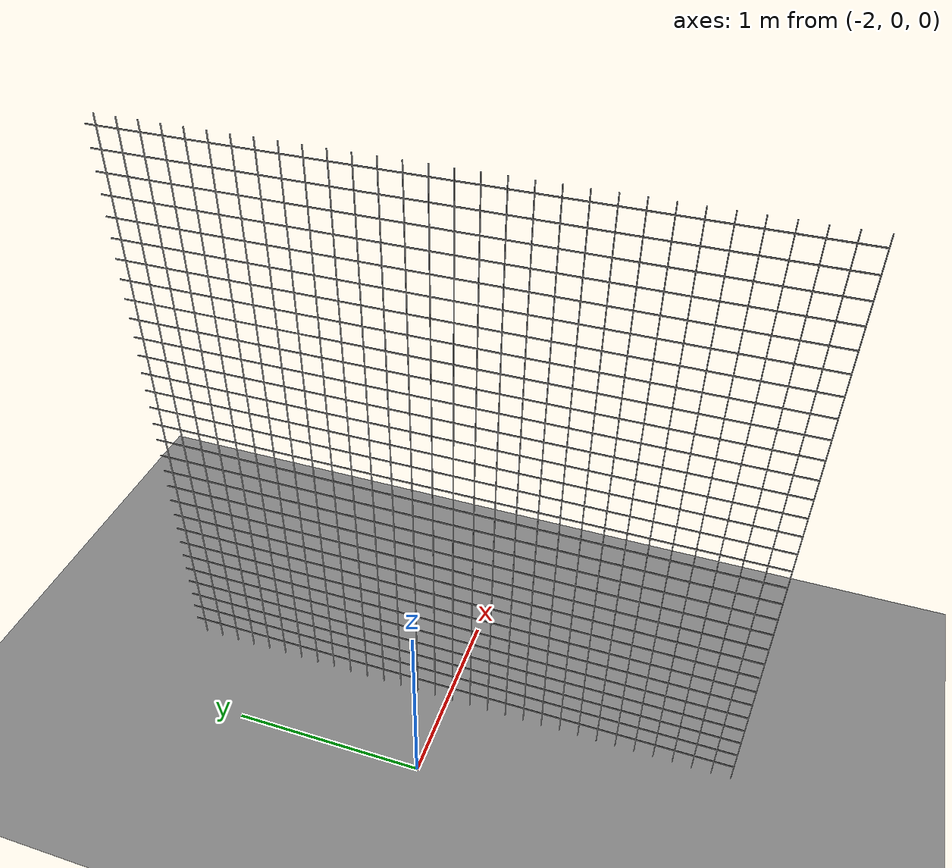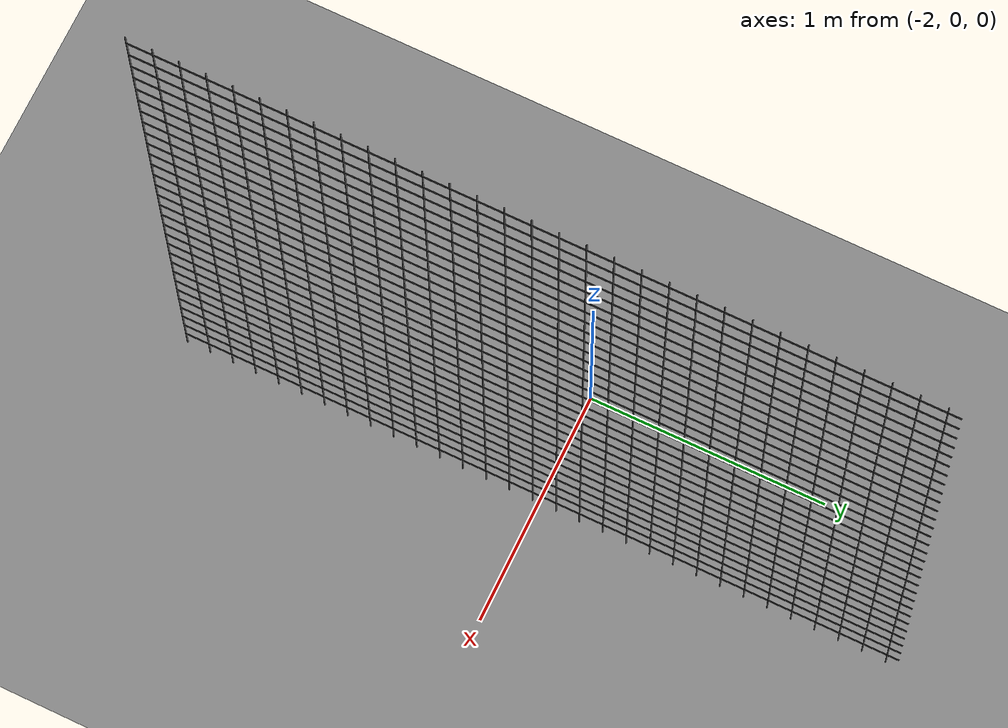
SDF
<sdf version="1.9">
 <world name="ecps295_cage10_monitor">
  <model name="ground_plane">
   <static>true</static>
   <link name="link">
    <collision name="collision">
     <geometry><plane><normal>0 0 1</normal><size>50 50</size></plane></geometry>
    </collision>
    <visual name="visual">
     <geometry><plane><normal>0 0 1</normal><size>50 50</size></plane></geometry>
     <material><ambient>0.5 0.5 0.5 1</ambient><diffuse>0.5 0.5 0.5 1</diffuse></material>
    </visual>
   </link>
  </model>
  <model name="net_w">
   <static>true</static>
   <link name="link">
    <collision name="c">
     <pose>-1.525 0.000 1.525 0 0 0</pose>
     <geometry><box><size>0.020 3.050 3.050</size></box></geometry>
    </collision>
    <visual name="v0">
     <pose>-1.525 -1.525 1.525 0 0 0.0000</pose>
     <geometry><box><size>0.004 0.004 3.050</size></box></geometry>
     <material><ambient>0.16 0.16 0.16 1</ambient><diffuse>0.16 0.16 0.16 1</diffuse></material>
    </visual>
    <visual name="v1">
     <pose>-1.525 -1.425 1.525 0 0 0.0000</pose>
     <geometry><box><size>0.004 0.004 3.050</size></box></geometry>
     <material><ambient>0.16 0.16 0.16 1</ambient><diffuse>0.16 0.16 0.16 1</diffuse></material>
    </visual>
    <visual name="v2">
     <pose>-1.525 -1.325 1.525 0 0 0.0000</pose>
     <geometry><box><size>0.004 0.004 3.050</size></box></geometry>
     <material><ambient>0.16 0.16 0.16 1</ambient><diffuse>0.16 0.16 0.16 1</diffuse></material>
    </visual>
    <visual name="v3">
     <pose>-1.525 -1.225 1.525 0 0 0.0000</pose>
     <geometry><box><size>0.004 0.004 3.050</size></box></geometry>
     <material><ambient>0.16 0.16 0.16 1</ambient><diffuse>0.16 0.16 0.16 1</diffuse></material>
    </visual>
    <visual name="v4">
     <pose>-1.525 -1.125 1.525 0 0 0.0000</pose>
     <geometry><box><size>0.004 0.004 3.050</size></box></geometry>
     <material><ambient>0.16 0.16 0.16 1</ambient><diffuse>0.16 0.16 0.16 1</diffuse></material>
    </visual>
    <visual name="v5">
     <pose>-1.525 -1.025 1.525 0 0 0.0000</pose>
     <geometry><box><size>0.004 0.004 3.050</size></box></geometry>
     <material><ambient>0.16 0.16 0.16 1</ambient><diffuse>0.16 0.16 0.16 1</diffuse></material>
    </visual>
    <visual name="v6">
     <pose>-1.525 -0.925 1.525 0 0 0.0000</pose>
     <geometry><box><size>0.004 0.004 3.050</size></box></geometry>
     <material><ambient>0.16 0.16 0.16 1</ambient><diffuse>0.16 0.16 0.16 1</diffuse></material>
    </visual>
    <visual name="v7">
     <pose>-1.525 -0.825 1.525 0 0 0.0000</pose>
     <geometry><box><size>0.004 0.004 3.050</size></box></geometry>
     <material><ambient>0.16 0.16 0.16 1</ambient><diffuse>0.16 0.16 0.16 1</diffuse></material>
    </visual>
    <visual name="v8">
     <pose>-1.525 -0.725 1.525 0 0 0.0000</pose>
     <geometry><box><size>0.004 0.004 3.050</size></box></geometry>
     <material><ambient>0.16 0.16 0.16 1</ambient><diffuse>0.16 0.16 0.16 1</diffuse></material>
    </visual>
    <visual name="v9">
     <pose>-1.525 -0.625 1.525 0 0 0.0000</pose>
     <geometry><box><size>0.004 0.004 3.050</size></box></geometry>
     <material><ambient>0.16 0.16 0.16 1</ambient><diffuse>0.16 0.16 0.16 1</diffuse></material>
    </visual>
    <visual name="v10">
     <pose>-1.525 -0.525 1.525 0 0 0.0000</pose>
     <geometry><box><size>0.004 0.004 3.050</size></box></geometry>
     <material><ambient>0.16 0.16 0.16 1</ambient><diffuse>0.16 0.16 0.16 1</diffuse></material>
    </visual>
    <visual name="v11">
     <pose>-1.525 -0.425 1.525 0 0 0.0000</pose>
     <geometry><box><size>0.004 0.004 3.050</size></box></geometry>
     <material><ambient>0.16 0.16 0.16 1</ambient><diffuse>0.16 0.16 0.16 1</diffuse></material>
    </visual>
    <visual name="v12">
     <pose>-1.525 -0.325 1.525 0 0 0.0000</pose>
     <geometry><box><size>0.004 0.004 3.050</size></box></geometry>
     <material><ambient>0.16 0.16 0.16 1</ambient><diffuse>0.16 0.16 0.16 1</diffuse></material>
    </visual>
    <visual name="v13">
     <pose>-1.525 -0.225 1.525 0 0 0.0000</pose>
     <geometry><box><size>0.004 0.004 3.050</size></box></geometry>
     <material><ambient>0.16 0.16 0.16 1</ambient><diffuse>0.16 0.16 0.16 1</diffuse></material>
    </visual>
    <visual name="v14">
     <pose>-1.525 -0.125 1.525 0 0 0.0000</pose>
     <geometry><box><size>0.004 0.004 3.050</size></box></geometry>
     <material><ambient>0.16 0.16 0.16 1</ambient><diffuse>0.16 0.16 0.16 1</diffuse></material>
    </visual>
    <visual name="v15">
     <pose>-1.525 -0.025 1.525 0 0 0.0000</pose>
     <geometry><box><size>0.004 0.004 3.050</size></box></geometry>
     <material><ambient>0.16 0.16 0.16 1</ambient><diffuse>0.16 0.16 0.16 1</diffuse></material>
    </visual>
    <visual name="v16">
     <pose>-1.525 0.075 1.525 0 0 0.0000</pose>
     <geometry><box><size>0.004 0.004 3.050</size></box></geometry>
     <material><ambient>0.16 0.16 0.16 1</ambient><diffuse>0.16 0.16 0.16 1</diffuse></material>
    </visual>
    <visual name="v17">
     <pose>-1.525 0.175 1.525 0 0 0.0000</pose>
     <geometry><box><size>0.004 0.004 3.050</size></box></geometry>
     <material><ambient>0.16 0.16 0.16 1</ambient><diffuse>0.16 0.16 0.16 1</diffuse></material>
    </visual>
    <visual name="v18">
     <pose>-1.525 0.275 1.525 0 0 0.0000</pose>
     <geometry><box><size>0.004 0.004 3.050</size></box></geometry>
     <material><ambient>0.16 0.16 0.16 1</ambient><diffuse>0.16 0.16 0.16 1</diffuse></material>
    </visual>
    <visual name="v19">
     <pose>-1.525 0.375 1.525 0 0 0.0000</pose>
     <geometry><box><size>0.004 0.004 3.050</size></box></geometry>
     <material><ambient>0.16 0.16 0.16 1</ambient><diffuse>0.16 0.16 0.16 1</diffuse></material>
    </visual>
    <visual name="v20">
     <pose>-1.525 0.475 1.525 0 0 0.0000</pose>
     <geometry><box><size>0.004 0.004 3.050</size></box></geometry>
     <material><ambient>0.16 0.16 0.16 1</ambient><diffuse>0.16 0.16 0.16 1</diffuse></material>
    </visual>
    <visual name="v21">
     <pose>-1.525 0.575 1.525 0 0 0.0000</pose>
     <geometry><box><size>0.004 0.004 3.050</size></box></geometry>
     <material><ambient>0.16 0.16 0.16 1</ambient><diffuse>0.16 0.16 0.16 1</diffuse></material>
    </visual>
    <visual name="v22">
     <pose>-1.525 0.675 1.525 0 0 0.0000</pose>
     <geometry><box><size>0.004 0.004 3.050</size></box></geometry>
     <material><ambient>0.16 0.16 0.16 1</ambient><diffuse>0.16 0.16 0.16 1</diffuse></material>
    </visual>
    <visual name="v23">
     <pose>-1.525 0.775 1.525 0 0 0.0000</pose>
     <geometry><box><size>0.004 0.004 3.050</size></box></geometry>
     <material><ambient>0.16 0.16 0.16 1</ambient><diffuse>0.16 0.16 0.16 1</diffuse></material>
    </visual>
    <visual name="v24">
     <pose>-1.525 0.875 1.525 0 0 0.0000</pose>
     <geometry><box><size>0.004 0.004 3.050</size></box></geometry>
     <material><ambient>0.16 0.16 0.16 1</ambient><diffuse>0.16 0.16 0.16 1</diffuse></material>
    </visual>
    <visual name="v25">
     <pose>-1.525 0.975 1.525 0 0 0.0000</pose>
     <geometry><box><size>0.004 0.004 3.050</size></box></geometry>
     <material><ambient>0.16 0.16 0.16 1</ambient><diffuse>0.16 0.16 0.16 1</diffuse></material>
    </visual>
    <visual name="v26">
     <pose>-1.525 1.075 1.525 0 0 0.0000</pose>
     <geometry><box><size>0.004 0.004 3.050</size></box></geometry>
     <material><ambient>0.16 0.16 0.16 1</ambient><diffuse>0.16 0.16 0.16 1</diffuse></material>
    </visual>
    <visual name="v27">
     <pose>-1.525 1.175 1.525 0 0 0.0000</pose>
     <geometry><box><size>0.004 0.004 3.050</size></box></geometry>
     <material><ambient>0.16 0.16 0.16 1</ambient><diffuse>0.16 0.16 0.16 1</diffuse></material>
    </visual>
    <visual name="v28">
     <pose>-1.525 1.275 1.525 0 0 0.0000</pose>
     <geometry><box><size>0.004 0.004 3.050</size></box></geometry>
     <material><ambient>0.16 0.16 0.16 1</ambient><diffuse>0.16 0.16 0.16 1</diffuse></material>
    </visual>
    <visual name="v29">
     <pose>-1.525 1.375 1.525 0 0 0.0000</pose>
     <geometry><box><size>0.004 0.004 3.050</size></box></geometry>
     <material><ambient>0.16 0.16 0.16 1</ambient><diffuse>0.16 0.16 0.16 1</diffuse></material>
    </visual>
    <visual name="v30">
     <pose>-1.525 1.475 1.525 0 0 0.0000</pose>
     <geometry><box><size>0.004 0.004 3.050</size></box></geometry>
     <material><ambient>0.16 0.16 0.16 1</ambient><diffuse>0.16 0.16 0.16 1</diffuse></material>
    </visual>
    <visual name="h1">
     <pose>-1.525 0.000 0.100 0 0 0.0000</pose>
     <geometry><box><size>0.004 3.050 0.004</size></box></geometry>
     <material><ambient>0.16 0.16 0.16 1</ambient><diffuse>0.16 0.16 0.16 1</diffuse></material>
    </visual>
    <visual name="h2">
     <pose>-1.525 0.000 0.200 0 0 0.0000</pose>
     <geometry><box><size>0.004 3.050 0.004</size></box></geometry>
     <material><ambient>0.16 0.16 0.16 1</ambient><diffuse>0.16 0.16 0.16 1</diffuse></material>
    </visual>
    <visual name="h3">
     <pose>-1.525 0.000 0.300 0 0 0.0000</pose>
     <geometry><box><size>0.004 3.050 0.004</size></box></geometry>
     <material><ambient>0.16 0.16 0.16 1</ambient><diffuse>0.16 0.16 0.16 1</diffuse></material>
    </visual>
    <visual name="h4">
     <pose>-1.525 0.000 0.400 0 0 0.0000</pose>
     <geometry><box><size>0.004 3.050 0.004</size></box></geometry>
     <material><ambient>0.16 0.16 0.16 1</ambient><diffuse>0.16 0.16 0.16 1</diffuse></material>
    </visual>
    <visual name="h5">
     <pose>-1.525 0.000 0.500 0 0 0.0000</pose>
     <geometry><box><size>0.004 3.050 0.004</size></box></geometry>
     <material><ambient>0.16 0.16 0.16 1</ambient><diffuse>0.16 0.16 0.16 1</diffuse></material>
    </visual>
    <visual name="h6">
     <pose>-1.525 0.000 0.600 0 0 0.0000</pose>
     <geometry><box><size>0.004 3.050 0.004</size></box></geometry>
     <material><ambient>0.16 0.16 0.16 1</ambient><diffuse>0.16 0.16 0.16 1</diffuse></material>
    </visual>
    <visual name="h7">
     <pose>-1.525 0.000 0.700 0 0 0.0000</pose>
     <geometry><box><size>0.004 3.050 0.004</size></box></geometry>
     <material><ambient>0.16 0.16 0.16 1</ambient><diffuse>0.16 0.16 0.16 1</diffuse></material>
    </visual>
    <visual name="h8">
     <pose>-1.525 0.000 0.800 0 0 0.0000</pose>
     <geometry><box><size>0.004 3.050 0.004</size></box></geometry>
     <material><ambient>0.16 0.16 0.16 1</ambient><diffuse>0.16 0.16 0.16 1</diffuse></material>
    </visual>
    <visual name="h9">
     <pose>-1.525 0.000 0.900 0 0 0.0000</pose>
     <geometry><box><size>0.004 3.050 0.004</size></box></geometry>
     <material><ambient>0.16 0.16 0.16 1</ambient><diffuse>0.16 0.16 0.16 1</diffuse></material>
    </visual>
    <visual name="h10">
     <pose>-1.525 0.000 1.000 0 0 0.0000</pose>
     <geometry><box><size>0.004 3.050 0.004</size></box></geometry>
     <material><ambient>0.16 0.16 0.16 1</ambient><diffuse>0.16 0.16 0.16 1</diffuse></material>
    </visual>
    <visual name="h11">
     <pose>-1.525 0.000 1.100 0 0 0.0000</pose>
     <geometry><box><size>0.004 3.050 0.004</size></box></geometry>
     <material><ambient>0.16 0.16 0.16 1</ambient><diffuse>0.16 0.16 0.16 1</diffuse></material>
    </visual>
    <visual name="h12">
     <pose>-1.525 0.000 1.200 0 0 0.0000</pose>
     <geometry><box><size>0.004 3.050 0.004</size></box></geometry>
     <material><ambient>0.16 0.16 0.16 1</ambient><diffuse>0.16 0.16 0.16 1</diffuse></material>
    </visual>
    <visual name="h13">
     <pose>-1.525 0.000 1.300 0 0 0.0000</pose>
     <geometry><box><size>0.004 3.050 0.004</size></box></geometry>
     <material><ambient>0.16 0.16 0.16 1</ambient><diffuse>0.16 0.16 0.16 1</diffuse></material>
    </visual>
    <visual name="h14">
     <pose>-1.525 0.000 1.400 0 0 0.0000</pose>
     <geometry><box><size>0.004 3.050 0.004</size></box></geometry>
     <material><ambient>0.16 0.16 0.16 1</ambient><diffuse>0.16 0.16 0.16 1</diffuse></material>
    </visual>
    <visual name="h15">
     <pose>-1.525 0.000 1.500 0 0 0.0000</pose>
     <geometry><box><size>0.004 3.050 0.004</size></box></geometry>
     <material><ambient>0.16 0.16 0.16 1</ambient><diffuse>0.16 0.16 0.16 1</diffuse></material>
    </visual>
    <visual name="h16">
     <pose>-1.525 0.000 1.600 0 0 0.0000</pose>
     <geometry><box><size>0.004 3.050 0.004</size></box></geometry>
     <material><ambient>0.16 0.16 0.16 1</ambient><diffuse>0.16 0.16 0.16 1</diffuse></material>
    </visual>
    <visual name="h17">
     <pose>-1.525 0.000 1.700 0 0 0.0000</pose>
     <geometry><box><size>0.004 3.050 0.004</size></box></geometry>
     <material><ambient>0.16 0.16 0.16 1</ambient><diffuse>0.16 0.16 0.16 1</diffuse></material>
    </visual>
    <visual name="h18">
     <pose>-1.525 0.000 1.800 0 0 0.0000</pose>
     <geometry><box><size>0.004 3.050 0.004</size></box></geometry>
     <material><ambient>0.16 0.16 0.16 1</ambient><diffuse>0.16 0.16 0.16 1</diffuse></material>
    </visual>
    <visual name="h19">
     <pose>-1.525 0.000 1.900 0 0 0.0000</pose>
     <geometry><box><size>0.004 3.050 0.004</size></box></geometry>
     <material><ambient>0.16 0.16 0.16 1</ambient><diffuse>0.16 0.16 0.16 1</diffuse></material>
    </visual>
    <visual name="h20">
     <pose>-1.525 0.000 2.000 0 0 0.0000</pose>
     <geometry><box><size>0.004 3.050 0.004</size></box></geometry>
     <material><ambient>0.16 0.16 0.16 1</ambient><diffuse>0.16 0.16 0.16 1</diffuse></material>
    </visual>
    <visual name="h21">
     <pose>-1.525 0.000 2.100 0 0 0.0000</pose>
     <geometry><box><size>0.004 3.050 0.004</size></box></geometry>
     <material><ambient>0.16 0.16 0.16 1</ambient><diffuse>0.16 0.16 0.16 1</diffuse></material>
    </visual>
    <visual name="h22">
     <pose>-1.525 0.000 2.200 0 0 0.0000</pose>
     <geometry><box><size>0.004 3.050 0.004</size></box></geometry>
     <material><ambient>0.16 0.16 0.16 1</ambient><diffuse>0.16 0.16 0.16 1</diffuse></material>
    </visual>
    <visual name="h23">
     <pose>-1.525 0.000 2.300 0 0 0.0000</pose>
     <geometry><box><size>0.004 3.050 0.004</size></box></geometry>
     <material><ambient>0.16 0.16 0.16 1</ambient><diffuse>0.16 0.16 0.16 1</diffuse></material>
    </visual>
    <visual name="h24">
     <pose>-1.525 0.000 2.400 0 0 0.0000</pose>
     <geometry><box><size>0.004 3.050 0.004</size></box></geometry>
     <material><ambient>0.16 0.16 0.16 1</ambient><diffuse>0.16 0.16 0.16 1</diffuse></material>
    </visual>
    <visual name="h25">
     <pose>-1.525 0.000 2.500 0 0 0.0000</pose>
     <geometry><box><size>0.004 3.050 0.004</size></box></geometry>
     <material><ambient>0.16 0.16 0.16 1</ambient><diffuse>0.16 0.16 0.16 1</diffuse></material>
    </visual>
    <visual name="h26">
     <pose>-1.525 0.000 2.600 0 0 0.0000</pose>
     <geometry><box><size>0.004 3.050 0.004</size></box></geometry>
     <material><ambient>0.16 0.16 0.16 1</ambient><diffuse>0.16 0.16 0.16 1</diffuse></material>
    </visual>
    <visual name="h27">
     <pose>-1.525 0.000 2.700 0 0 0.0000</pose>
     <geometry><box><size>0.004 3.050 0.004</size></box></geometry>
     <material><ambient>0.16 0.16 0.16 1</ambient><diffuse>0.16 0.16 0.16 1</diffuse></material>
    </visual>
    <visual name="h28">
     <pose>-1.525 0.000 2.800 0 0 0.0000</pose>
     <geometry><box><size>0.004 3.050 0.004</size></box></geometry>
     <material><ambient>0.16 0.16 0.16 1</ambient><diffuse>0.16 0.16 0.16 1</diffuse></material>
    </visual>
    <visual name="h29">
     <pose>-1.525 0.000 2.900 0 0 0.0000</pose>
     <geometry><box><size>0.004 3.050 0.004</size></box></geometry>
     <material><ambient>0.16 0.16 0.16 1</ambient><diffuse>0.16 0.16 0.16 1</diffuse></material>
    </visual>
    <visual name="h30">
     <pose>-1.525 0.000 3.000 0 0 0.0000</pose>
     <geometry><box><size>0.004 3.050 0.004</size></box></geometry>
     <material><ambient>0.16 0.16 0.16 1</ambient><diffuse>0.16 0.16 0.16 1</diffuse></material>
    </visual>
   </link>
  </model>
 </world>
</sdf>
